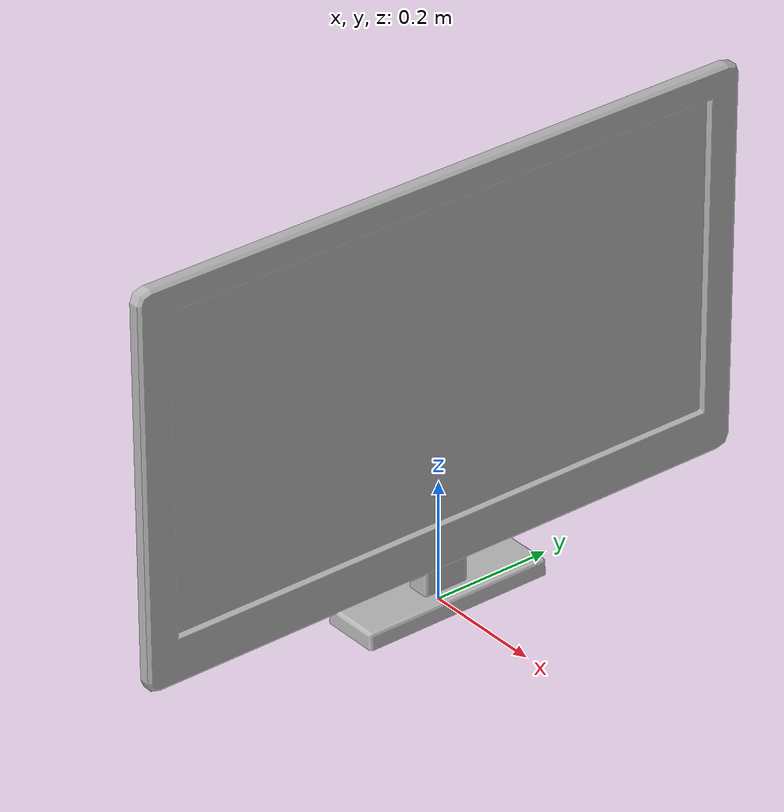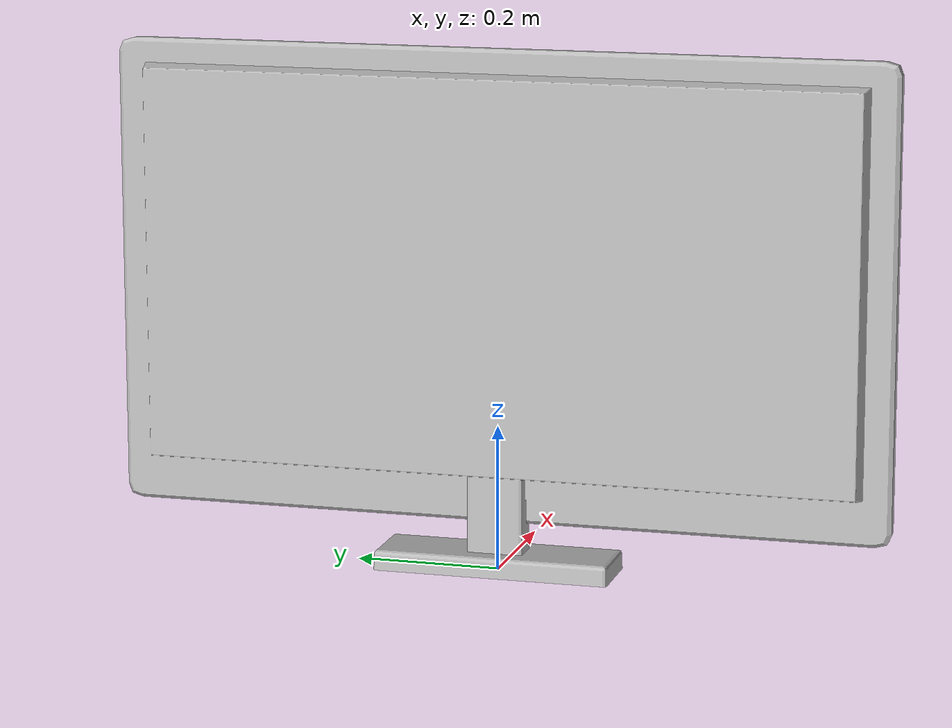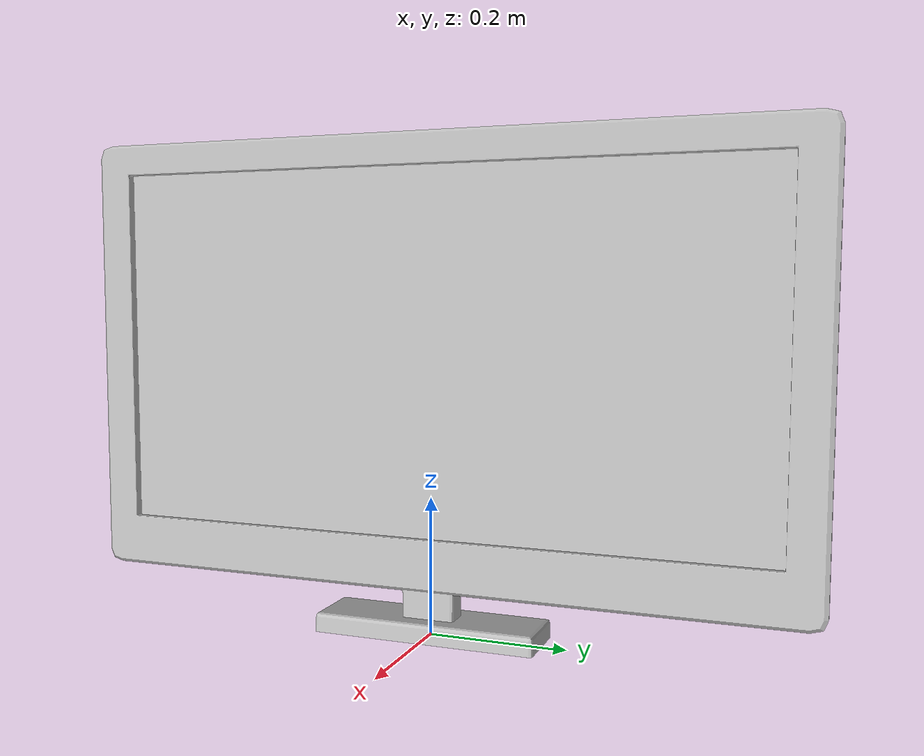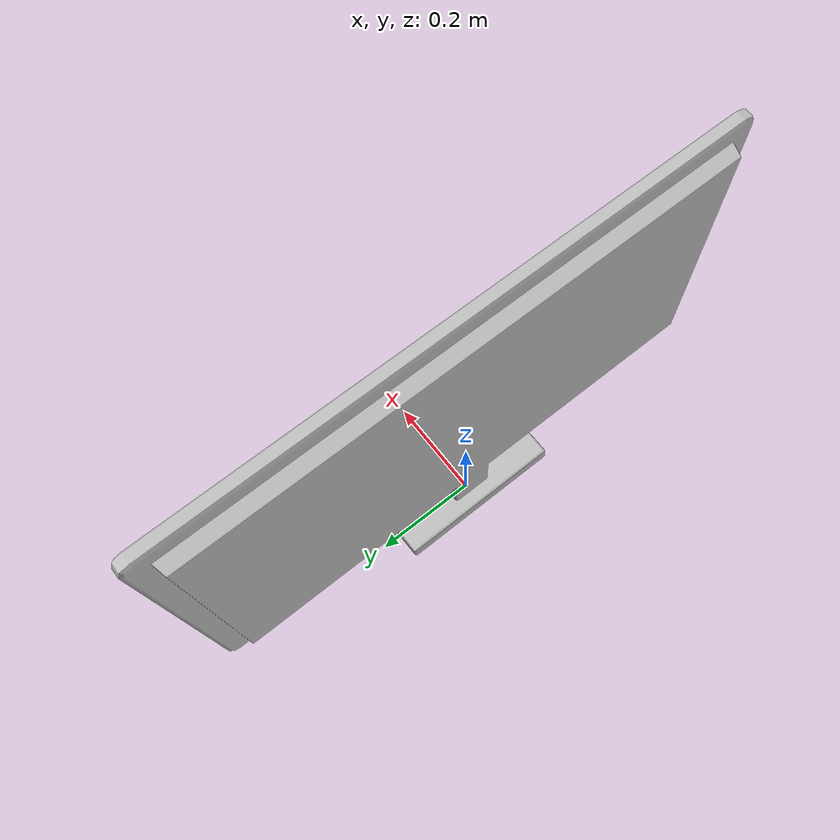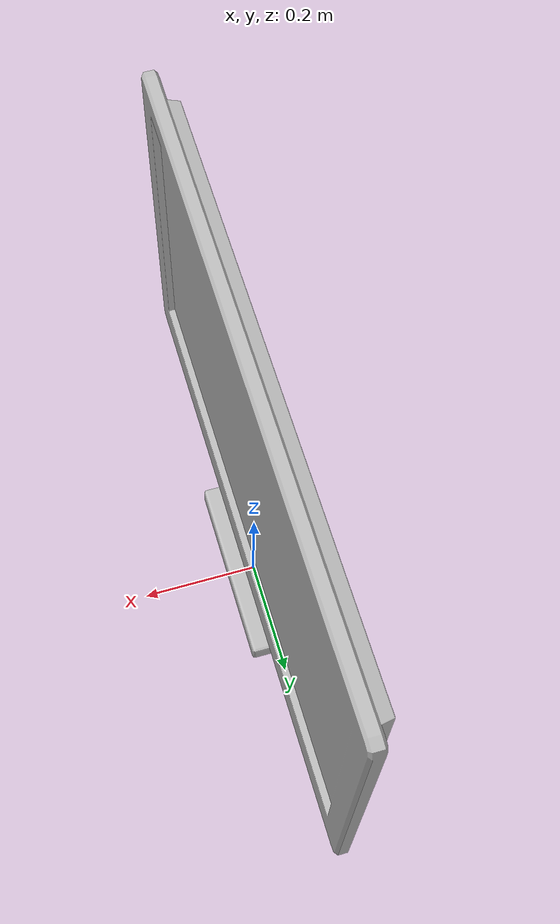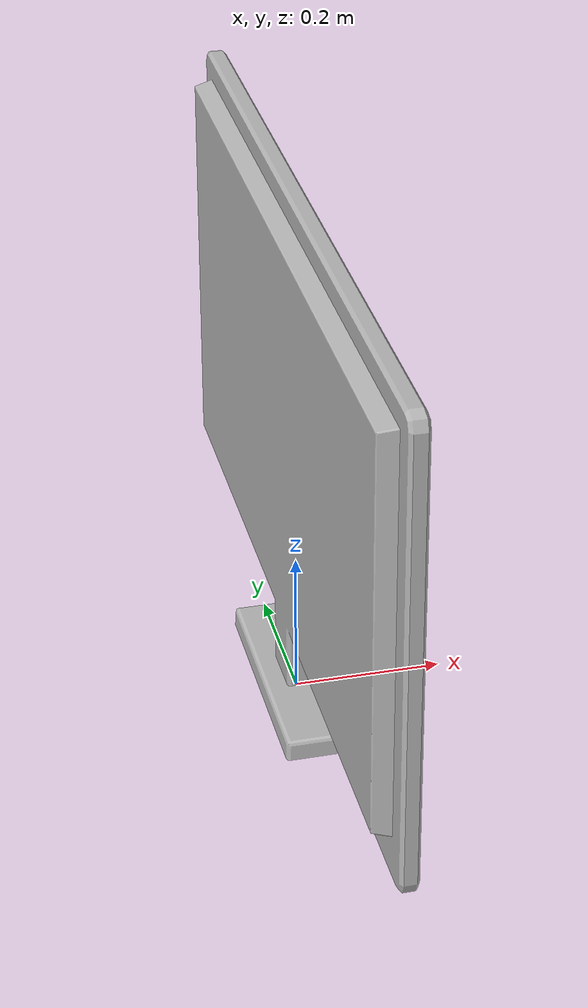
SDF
<?xml version='1.0'?>
<sdf version='1.4'>
  <model name='113'>
    <pose>0 0 0 0 0 0</pose>
    <static>true</static>
    <link name='link'>
      <collision name='collision'>
        <pose>0 0 0 0 0 0</pose>
        <geometry>
          <box>
            <size>0.1 1.07995 2</size>
          </box>
        </geometry>
      </collision>
      <visual name='visual'>
        <pose>0 0 0 0 0 0</pose>
        <geometry>
          <mesh><uri>model://113/113.dae</uri></mesh>
        </geometry>
      </visual>
    </link>
  </model>
</sdf>
